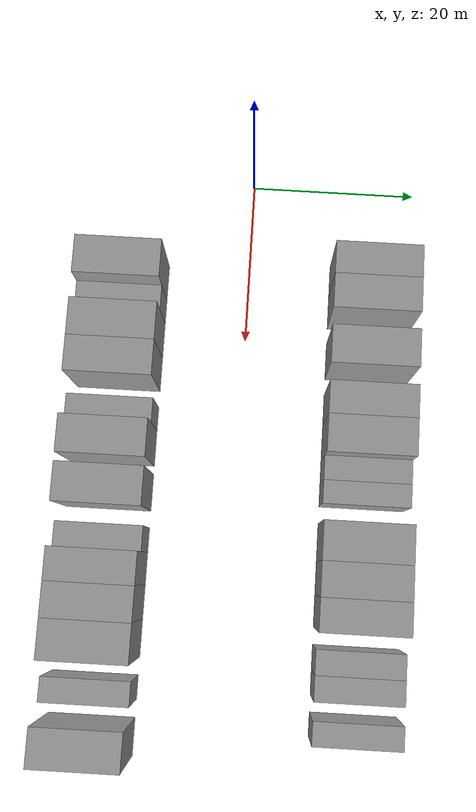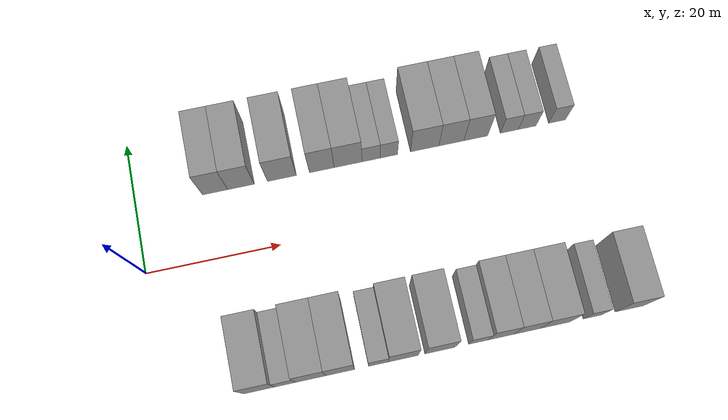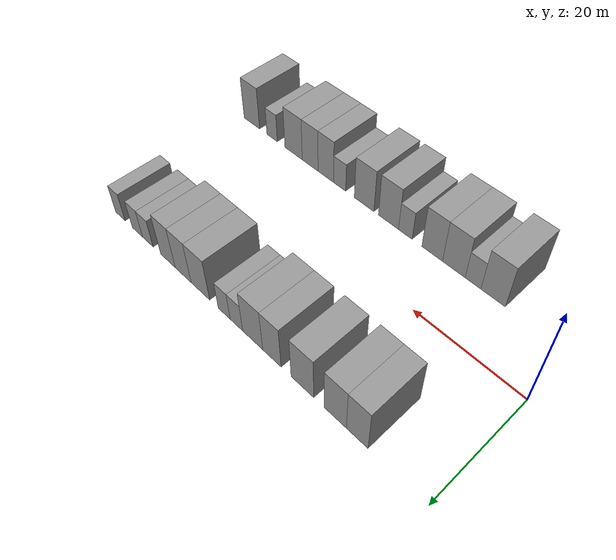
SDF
<sdf version="1.6">
 <world name="default">
  <model name="building_1">
   <static>1</static>
   <pose>11.9153 15.0000 0 0.000000 0.000000 1.570796</pose>
   <link name="link">
    <pose>0 0 4.50 0 0 0</pose>
    <collision name="collision"><geometry><box><size>10.0000 3.8306 9.0000</size></box></geometry></collision>
    <visual name="visual">
     <cast_shadows>0</cast_shadows>
     <geometry><box><size>10.0000 3.8306 9.0000</size></box></geometry>
     <material>
      <script>
       <uri>model://grey_wall/materials/scripts</uri>
       <uri>model://grey_wall/materials/textures</uri>
       <name>vrc/grey_wall</name>
      </script>
     </material>
    </visual>
   </link>
  </model>
  <model name="building_2">
   <static>1</static>
   <pose>15.8499 15.0000 0 0.000000 0.000000 1.570796</pose>
   <link name="link">
    <pose>0 0 4.50 0 0 0</pose>
    <collision name="collision"><geometry><box><size>10.0000 4.0385 9.0000</size></box></geometry></collision>
    <visual name="visual">
     <cast_shadows>0</cast_shadows>
     <geometry><box><size>10.0000 4.0385 9.0000</size></box></geometry>
     <material>
      <script>
       <uri>model://grey_wall/materials/scripts</uri>
       <uri>model://grey_wall/materials/textures</uri>
       <name>vrc/grey_wall</name>
      </script>
     </material>
    </visual>
   </link>
  </model>
  <model name="building_3">
   <static>1</static>
   <pose>22.0802 15.0000 0 0.000000 0.000000 1.570796</pose>
   <link name="link">
    <pose>0 0 4.50 0 0 0</pose>
    <collision name="collision"><geometry><box><size>10.0000 4.4222 9.0000</size></box></geometry></collision>
    <visual name="visual">
     <cast_shadows>0</cast_shadows>
     <geometry><box><size>10.0000 4.4222 9.0000</size></box></geometry>
     <material>
      <script>
       <uri>model://grey_wall/materials/scripts</uri>
       <uri>model://grey_wall/materials/textures</uri>
       <name>vrc/grey_wall</name>
      </script>
     </material>
    </visual>
   </link>
  </model>
  <model name="building_4">
   <static>1</static>
   <pose>28.1877 15.0000 0 0.000000 0.000000 1.570796</pose>
   <link name="link">
    <pose>0 0 4.50 0 0 0</pose>
    <collision name="collision"><geometry><box><size>10.0000 3.7928 9.0000</size></box></geometry></collision>
    <visual name="visual">
     <cast_shadows>0</cast_shadows>
     <geometry><box><size>10.0000 3.7928 9.0000</size></box></geometry>
     <material>
      <script>
       <uri>model://grey_wall/materials/scripts</uri>
       <uri>model://grey_wall/materials/textures</uri>
       <name>vrc/grey_wall</name>
      </script>
     </material>
    </visual>
   </link>
  </model>
  <model name="building_5">
   <static>1</static>
   <pose>32.2381 15.0000 0 0.000000 0.000000 1.570796</pose>
   <link name="link">
    <pose>0 0 4.50 0 0 0</pose>
    <collision name="collision"><geometry><box><size>10.0000 4.3079 9.0000</size></box></geometry></collision>
    <visual name="visual">
     <cast_shadows>0</cast_shadows>
     <geometry><box><size>10.0000 4.3079 9.0000</size></box></geometry>
     <material>
      <script>
       <uri>model://grey_wall/materials/scripts</uri>
       <uri>model://grey_wall/materials/textures</uri>
       <name>vrc/grey_wall</name>
      </script>
     </material>
    </visual>
   </link>
  </model>
  <model name="building_6">
   <static>1</static>
   <pose>35.7951 15.0000 0 0.000000 0.000000 1.570796</pose>
   <link name="link">
    <pose>0 0 3.00 0 0 0</pose>
    <collision name="collision"><geometry><box><size>10.0000 2.8061 6.0000</size></box></geometry></collision>
    <visual name="visual">
     <cast_shadows>0</cast_shadows>
     <geometry><box><size>10.0000 2.8061 6.0000</size></box></geometry>
     <material>
      <script>
       <uri>model://grey_wall/materials/scripts</uri>
       <uri>model://grey_wall/materials/textures</uri>
       <name>vrc/grey_wall</name>
      </script>
     </material>
    </visual>
   </link>
  </model>
  <model name="building_7">
   <static>1</static>
   <pose>38.5435 15.0000 0 0.000000 0.000000 1.570796</pose>
   <link name="link">
    <pose>0 0 3.00 0 0 0</pose>
    <collision name="collision"><geometry><box><size>10.0000 2.6907 6.0000</size></box></geometry></collision>
    <visual name="visual">
     <cast_shadows>0</cast_shadows>
     <geometry><box><size>10.0000 2.6907 6.0000</size></box></geometry>
     <material>
      <script>
       <uri>model://grey_wall/materials/scripts</uri>
       <uri>model://grey_wall/materials/textures</uri>
       <name>vrc/grey_wall</name>
      </script>
     </material>
    </visual>
   </link>
  </model>
  <model name="building_8">
   <static>1</static>
   <pose>44.0865 15.0000 0 0.000000 0.000000 1.570796</pose>
   <link name="link">
    <pose>0 0 4.50 0 0 0</pose>
    <collision name="collision"><geometry><box><size>10.0000 4.3954 9.0000</size></box></geometry></collision>
    <visual name="visual">
     <cast_shadows>0</cast_shadows>
     <geometry><box><size>10.0000 4.3954 9.0000</size></box></geometry>
     <material>
      <script>
       <uri>model://grey_wall/materials/scripts</uri>
       <uri>model://grey_wall/materials/textures</uri>
       <name>vrc/grey_wall</name>
      </script>
     </material>
    </visual>
   </link>
  </model>
  <model name="building_9">
   <static>1</static>
   <pose>48.2408 15.0000 0 0.000000 0.000000 1.570796</pose>
   <link name="link">
    <pose>0 0 4.50 0 0 0</pose>
    <collision name="collision"><geometry><box><size>10.0000 3.9131 9.0000</size></box></geometry></collision>
    <visual name="visual">
     <cast_shadows>0</cast_shadows>
     <geometry><box><size>10.0000 3.9131 9.0000</size></box></geometry>
     <material>
      <script>
       <uri>model://grey_wall/materials/scripts</uri>
       <uri>model://grey_wall/materials/textures</uri>
       <name>vrc/grey_wall</name>
      </script>
     </material>
    </visual>
   </link>
  </model>
  <model name="building_10">
   <static>1</static>
   <pose>52.0716 15.0000 0 0.000000 0.000000 1.570796</pose>
   <link name="link">
    <pose>0 0 4.50 0 0 0</pose>
    <collision name="collision"><geometry><box><size>10.0000 3.7485 9.0000</size></box></geometry></collision>
    <visual name="visual">
     <cast_shadows>0</cast_shadows>
     <geometry><box><size>10.0000 3.7485 9.0000</size></box></geometry>
     <material>
      <script>
       <uri>model://grey_wall/materials/scripts</uri>
       <uri>model://grey_wall/materials/textures</uri>
       <name>vrc/grey_wall</name>
      </script>
     </material>
    </visual>
   </link>
  </model>
  <model name="building_11">
   <static>1</static>
   <pose>57.3445 15.0000 0 0.000000 0.000000 1.570796</pose>
   <link name="link">
    <pose>0 0 3.00 0 0 0</pose>
    <collision name="collision"><geometry><box><size>10.0000 2.7974 6.0000</size></box></geometry></collision>
    <visual name="visual">
     <cast_shadows>0</cast_shadows>
     <geometry><box><size>10.0000 2.7974 6.0000</size></box></geometry>
     <material>
      <script>
       <uri>model://grey_wall/materials/scripts</uri>
       <uri>model://grey_wall/materials/textures</uri>
       <name>vrc/grey_wall</name>
      </script>
     </material>
    </visual>
   </link>
  </model>
  <model name="building_12">
   <static>1</static>
   <pose>60.1542 15.0000 0 0.000000 0.000000 1.570796</pose>
   <link name="link">
    <pose>0 0 3.00 0 0 0</pose>
    <collision name="collision"><geometry><box><size>10.0000 2.8222 6.0000</size></box></geometry></collision>
    <visual name="visual">
     <cast_shadows>0</cast_shadows>
     <geometry><box><size>10.0000 2.8222 6.0000</size></box></geometry>
     <material>
      <script>
       <uri>model://grey_wall/materials/scripts</uri>
       <uri>model://grey_wall/materials/textures</uri>
       <name>vrc/grey_wall</name>
      </script>
     </material>
    </visual>
   </link>
  </model>
  <model name="building_13">
   <static>1</static>
   <pose>64.9025 15.0000 0 0.000000 0.000000 1.570796</pose>
   <link name="link">
    <pose>0 0 3.00 0 0 0</pose>
    <collision name="collision"><geometry><box><size>10.0000 2.6743 6.0000</size></box></geometry></collision>
    <visual name="visual">
     <cast_shadows>0</cast_shadows>
     <geometry><box><size>10.0000 2.6743 6.0000</size></box></geometry>
     <material>
      <script>
       <uri>model://grey_wall/materials/scripts</uri>
       <uri>model://grey_wall/materials/textures</uri>
       <name>vrc/grey_wall</name>
      </script>
     </material>
    </visual>
   </link>
  </model>
  <model name="building_54">
   <static>1</static>
   <pose>13.2277 -15.0000 0 0.000000 0.000000 1.570796</pose>
   <link name="link">
    <pose>0 0 4.50 0 0 0</pose>
    <collision name="collision"><geometry><box><size>10.0000 4.4554 9.0000</size></box></geometry></collision>
    <visual name="visual">
     <cast_shadows>0</cast_shadows>
     <geometry><box><size>10.0000 4.4554 9.0000</size></box></geometry>
     <material>
      <script>
       <uri>model://grey_wall/materials/scripts</uri>
       <uri>model://grey_wall/materials/textures</uri>
       <name>vrc/grey_wall</name>
      </script>
     </material>
    </visual>
   </link>
  </model>
  <model name="building_55">
   <static>1</static>
   <pose>16.9342 -15.0000 0 0.000000 0.000000 1.570796</pose>
   <link name="link">
    <pose>0 0 3.00 0 0 0</pose>
    <collision name="collision"><geometry><box><size>10.0000 2.9576 6.0000</size></box></geometry></collision>
    <visual name="visual">
     <cast_shadows>0</cast_shadows>
     <geometry><box><size>10.0000 2.9576 6.0000</size></box></geometry>
     <material>
      <script>
       <uri>model://grey_wall/materials/scripts</uri>
       <uri>model://grey_wall/materials/textures</uri>
       <name>vrc/grey_wall</name>
      </script>
     </material>
    </visual>
   </link>
  </model>
  <model name="building_56">
   <static>1</static>
   <pose>20.6080 -15.0000 0 0.000000 0.000000 1.570796</pose>
   <link name="link">
    <pose>0 0 4.50 0 0 0</pose>
    <collision name="collision"><geometry><box><size>10.0000 4.3901 9.0000</size></box></geometry></collision>
    <visual name="visual">
     <cast_shadows>0</cast_shadows>
     <geometry><box><size>10.0000 4.3901 9.0000</size></box></geometry>
     <material>
      <script>
       <uri>model://grey_wall/materials/scripts</uri>
       <uri>model://grey_wall/materials/textures</uri>
       <name>vrc/grey_wall</name>
      </script>
     </material>
    </visual>
   </link>
  </model>
  <model name="building_57">
   <static>1</static>
   <pose>24.8699 -15.0000 0 0.000000 0.000000 1.570796</pose>
   <link name="link">
    <pose>0 0 4.50 0 0 0</pose>
    <collision name="collision"><geometry><box><size>10.0000 4.1338 9.0000</size></box></geometry></collision>
    <visual name="visual">
     <cast_shadows>0</cast_shadows>
     <geometry><box><size>10.0000 4.1338 9.0000</size></box></geometry>
     <material>
      <script>
       <uri>model://grey_wall/materials/scripts</uri>
       <uri>model://grey_wall/materials/textures</uri>
       <name>vrc/grey_wall</name>
      </script>
     </material>
    </visual>
   </link>
  </model>
  <model name="building_58">
   <static>1</static>
   <pose>30.3729 -15.0000 0 0.000000 0.000000 1.570796</pose>
   <link name="link">
    <pose>0 0 3.00 0 0 0</pose>
    <collision name="collision"><geometry><box><size>10.0000 2.8723 6.0000</size></box></geometry></collision>
    <visual name="visual">
     <cast_shadows>0</cast_shadows>
     <geometry><box><size>10.0000 2.8723 6.0000</size></box></geometry>
     <material>
      <script>
       <uri>model://grey_wall/materials/scripts</uri>
       <uri>model://grey_wall/materials/textures</uri>
       <name>vrc/grey_wall</name>
      </script>
     </material>
    </visual>
   </link>
  </model>
  <model name="building_59">
   <static>1</static>
   <pose>33.9763 -15.0000 0 0.000000 0.000000 1.570796</pose>
   <link name="link">
    <pose>0 0 4.50 0 0 0</pose>
    <collision name="collision"><geometry><box><size>10.0000 4.3345 9.0000</size></box></geometry></collision>
    <visual name="visual">
     <cast_shadows>0</cast_shadows>
     <geometry><box><size>10.0000 4.3345 9.0000</size></box></geometry>
     <material>
      <script>
       <uri>model://grey_wall/materials/scripts</uri>
       <uri>model://grey_wall/materials/textures</uri>
       <name>vrc/grey_wall</name>
      </script>
     </material>
    </visual>
   </link>
  </model>
  <model name="building_60">
   <static>1</static>
   <pose>39.3561 -15.0000 0 0.000000 0.000000 1.570796</pose>
   <link name="link">
    <pose>0 0 4.50 0 0 0</pose>
    <collision name="collision"><geometry><box><size>10.0000 4.4251 9.0000</size></box></geometry></collision>
    <visual name="visual">
     <cast_shadows>0</cast_shadows>
     <geometry><box><size>10.0000 4.4251 9.0000</size></box></geometry>
     <material>
      <script>
       <uri>model://grey_wall/materials/scripts</uri>
       <uri>model://grey_wall/materials/textures</uri>
       <name>vrc/grey_wall</name>
      </script>
     </material>
    </visual>
   </link>
  </model>
  <model name="building_61">
   <static>1</static>
   <pose>45.0095 -15.0000 0 0.000000 0.000000 1.570796</pose>
   <link name="link">
    <pose>0 0 3.00 0 0 0</pose>
    <collision name="collision"><geometry><box><size>10.0000 2.8817 6.0000</size></box></geometry></collision>
    <visual name="visual">
     <cast_shadows>0</cast_shadows>
     <geometry><box><size>10.0000 2.8817 6.0000</size></box></geometry>
     <material>
      <script>
       <uri>model://grey_wall/materials/scripts</uri>
       <uri>model://grey_wall/materials/textures</uri>
       <name>vrc/grey_wall</name>
      </script>
     </material>
    </visual>
   </link>
  </model>
  <model name="building_62">
   <static>1</static>
   <pose>48.3139 -15.0000 0 0.000000 0.000000 1.570796</pose>
   <link name="link">
    <pose>0 0 4.50 0 0 0</pose>
    <collision name="collision"><geometry><box><size>10.0000 3.7271 9.0000</size></box></geometry></collision>
    <visual name="visual">
     <cast_shadows>0</cast_shadows>
     <geometry><box><size>10.0000 3.7271 9.0000</size></box></geometry>
     <material>
      <script>
       <uri>model://grey_wall/materials/scripts</uri>
       <uri>model://grey_wall/materials/textures</uri>
       <name>vrc/grey_wall</name>
      </script>
     </material>
    </visual>
   </link>
  </model>
  <model name="building_63">
   <static>1</static>
   <pose>52.1491 -15.0000 0 0.000000 0.000000 1.570796</pose>
   <link name="link">
    <pose>0 0 4.50 0 0 0</pose>
    <collision name="collision"><geometry><box><size>10.0000 3.9433 9.0000</size></box></geometry></collision>
    <visual name="visual">
     <cast_shadows>0</cast_shadows>
     <geometry><box><size>10.0000 3.9433 9.0000</size></box></geometry>
     <material>
      <script>
       <uri>model://grey_wall/materials/scripts</uri>
       <uri>model://grey_wall/materials/textures</uri>
       <name>vrc/grey_wall</name>
      </script>
     </material>
    </visual>
   </link>
  </model>
  <model name="building_64">
   <static>1</static>
   <pose>56.3393 -15.0000 0 0.000000 0.000000 1.570796</pose>
   <link name="link">
    <pose>0 0 4.50 0 0 0</pose>
    <collision name="collision"><geometry><box><size>10.0000 4.4372 9.0000</size></box></geometry></collision>
    <visual name="visual">
     <cast_shadows>0</cast_shadows>
     <geometry><box><size>10.0000 4.4372 9.0000</size></box></geometry>
     <material>
      <script>
       <uri>model://grey_wall/materials/scripts</uri>
       <uri>model://grey_wall/materials/textures</uri>
       <name>vrc/grey_wall</name>
      </script>
     </material>
    </visual>
   </link>
  </model>
  <model name="building_65">
   <static>1</static>
   <pose>61.9436 -15.0000 0 0.000000 0.000000 1.570796</pose>
   <link name="link">
    <pose>0 0 3.00 0 0 0</pose>
    <collision name="collision"><geometry><box><size>10.0000 2.7714 6.0000</size></box></geometry></collision>
    <visual name="visual">
     <cast_shadows>0</cast_shadows>
     <geometry><box><size>10.0000 2.7714 6.0000</size></box></geometry>
     <material>
      <script>
       <uri>model://grey_wall/materials/scripts</uri>
       <uri>model://grey_wall/materials/textures</uri>
       <name>vrc/grey_wall</name>
      </script>
     </material>
    </visual>
   </link>
  </model>
  <model name="building_66">
   <static>1</static>
   <pose>67.4714 -15.0000 0 0.000000 0.000000 1.570796</pose>
   <link name="link">
    <pose>0 0 4.50 0 0 0</pose>
    <collision name="collision"><geometry><box><size>10.0000 4.2842 9.0000</size></box></geometry></collision>
    <visual name="visual">
     <cast_shadows>0</cast_shadows>
     <geometry><box><size>10.0000 4.2842 9.0000</size></box></geometry>
     <material>
      <script>
       <uri>model://grey_wall/materials/scripts</uri>
       <uri>model://grey_wall/materials/textures</uri>
       <name>vrc/grey_wall</name>
      </script>
     </material>
    </visual>
   </link>
  </model>
 </world>
</sdf>
